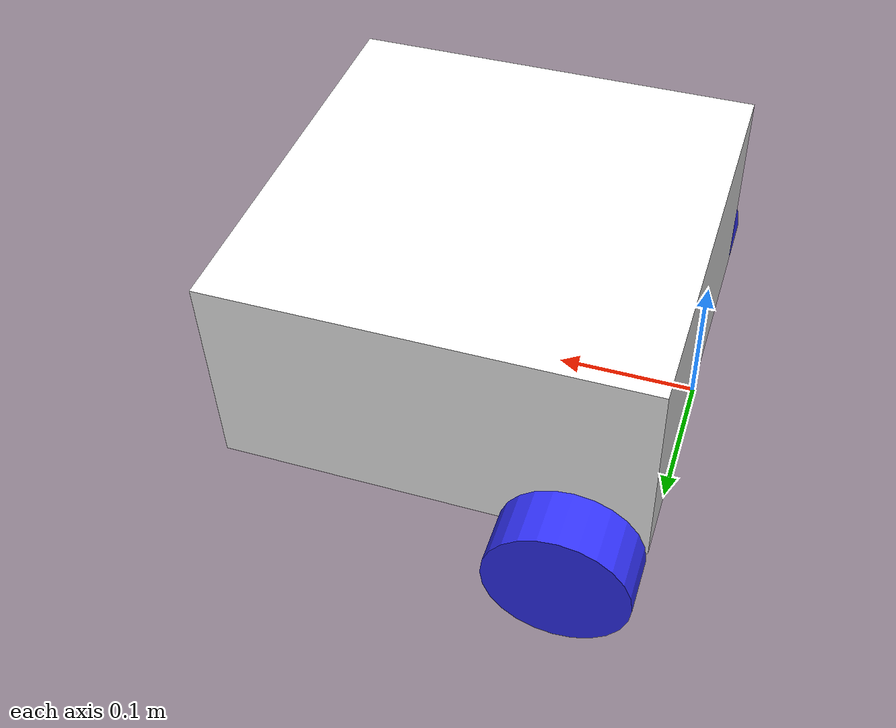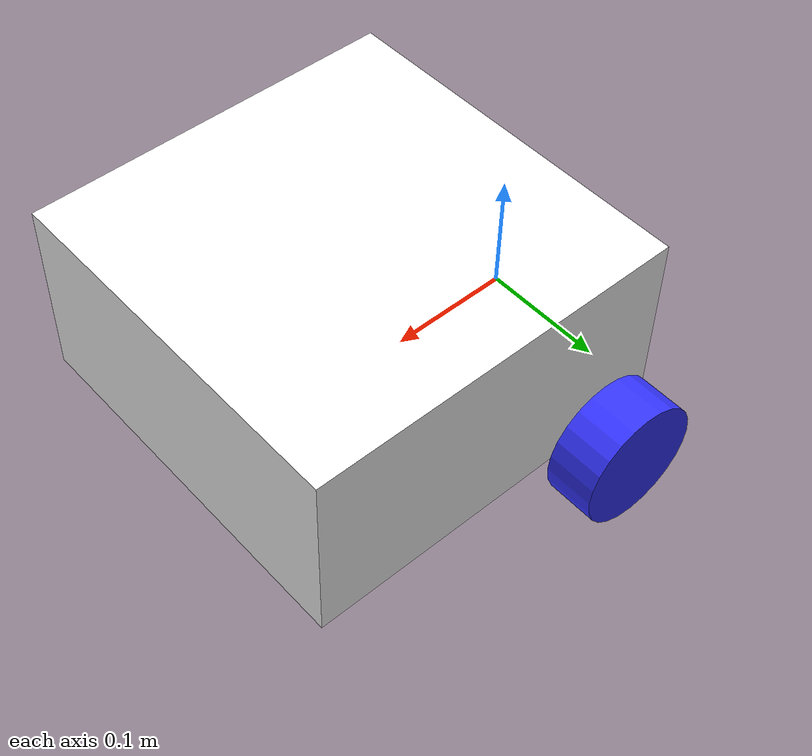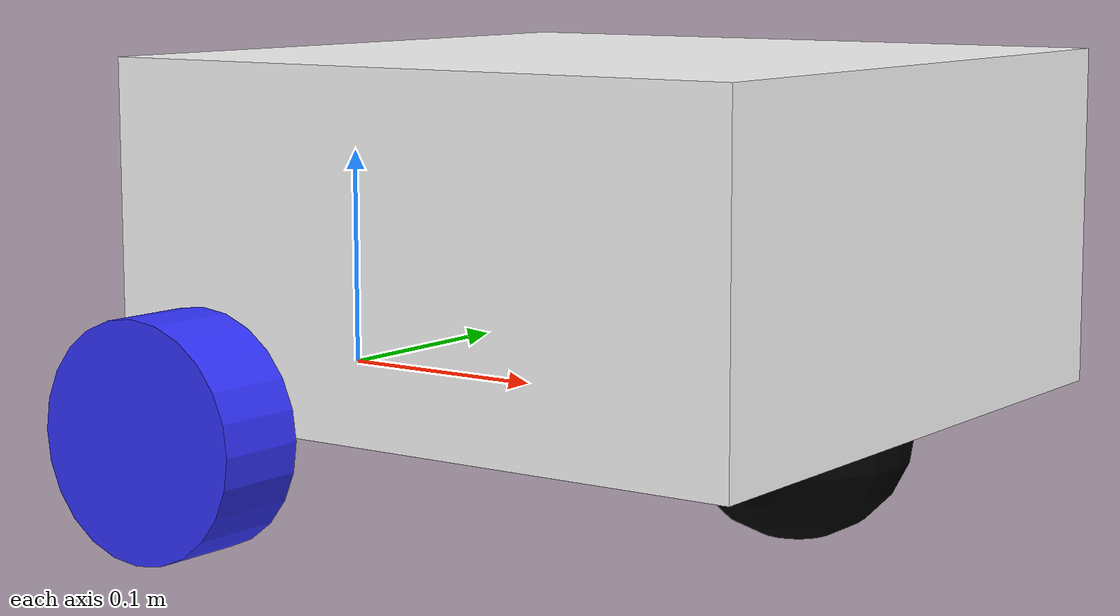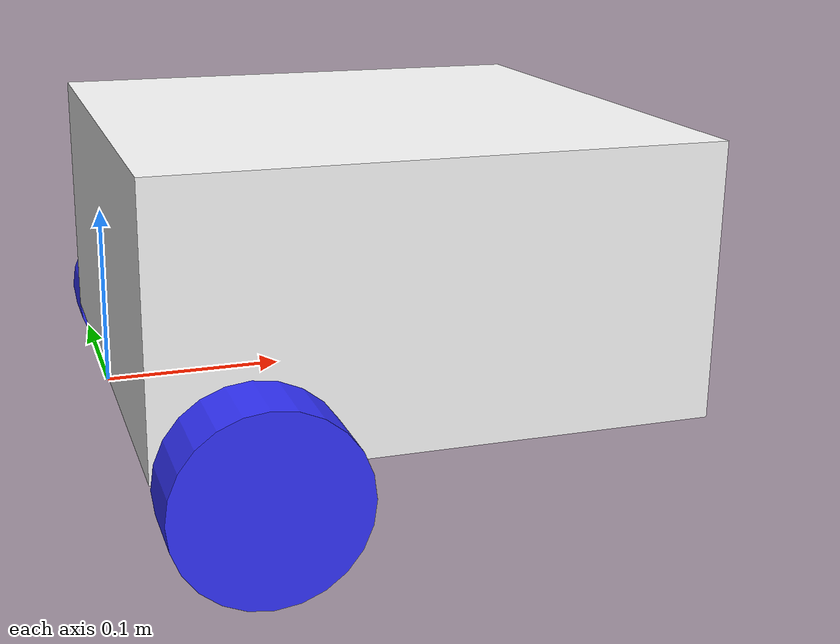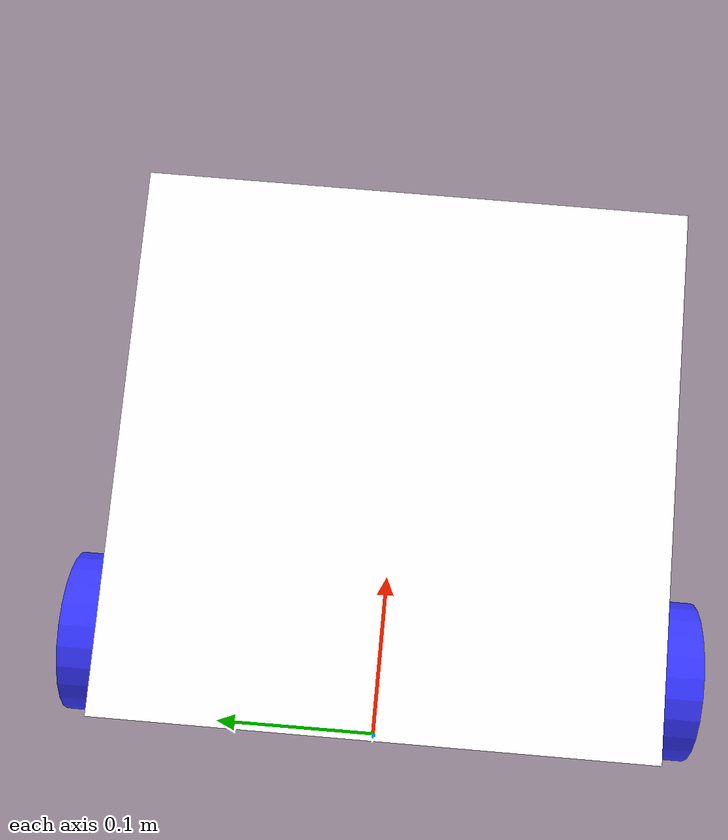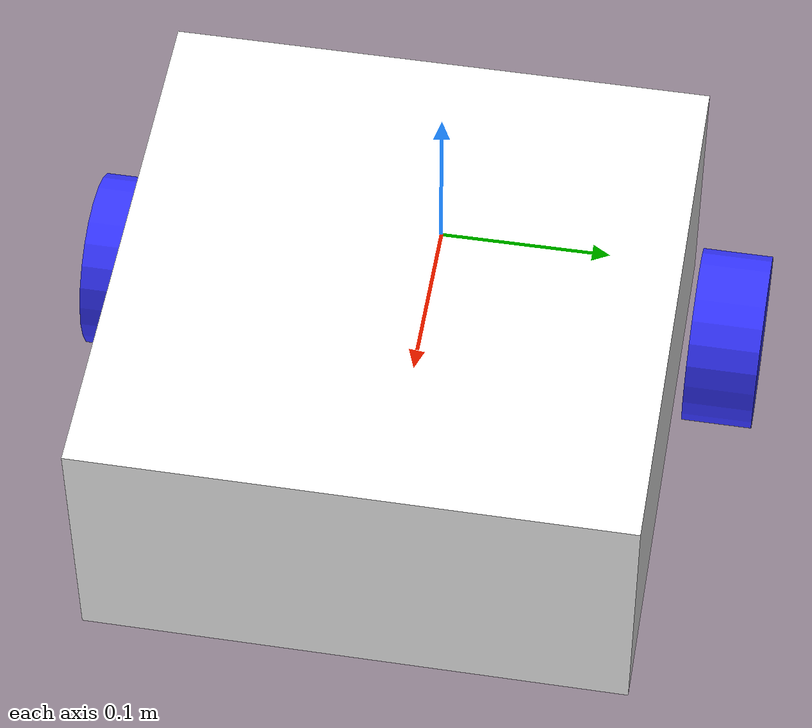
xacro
<?xml version="1.0"?>
<robot xmlns:xacro="http://www.ros.org/wiki/xacro"  name="robot">

    <xacro:include filename="inertial_macros.xacro" />
    <xacro:property name="M_PI" value="3.1415926535897931" />

    <!--Materials-->

    <material name="white">
        <color rgba="1 1 1 1"/>
    </material>

    <material name="black">
        <color rgba="0 0 0 1"/>
    </material>

    <material name="orange">
        <color rgba="1 0.5 0 1"/>
    </material>

    <material name="blue">
        <color rgba="0.2 0.2 1 1"/>
    </material>

    <material name="red">
        <color rgba="1 0.2 0.2 1"/>
    </material>

    <!--Chassis-->

    <link name="base_link" />

    <joint name="base_footprint_joint" type="fixed">
        <origin xyz="0 0 -0.05" rpy="0 0 0"/>
        <parent link="base_link"/>
        <child link="base_footprint"/>
    </joint>

    <link name="base_footprint" />

    <joint name = "chassis_joint" type="fixed">
        <origin xyz="0 0 0" rpy="0 0 0"/>
        <parent link="base_link"/>
        <child link="chassis"/>
    </joint>

    <link name="chassis">
        <visual>
            <origin xyz="0.15 0 0.075" rpy="0 0 0"/>
            <geometry>
                <box size="0.3 0.3 0.15"/>
            </geometry>
            <material name="white"/>
        </visual>

        <collision>
            <origin xyz="0.15 0 0.075" rpy="0 0 0"/>
            <geometry>
                <box size="0.3 0.3 0.15"/>
            </geometry>
        </collision>

        <xacro:inertial_box mass="0.5" x="0.3" y="0.3" z="0.15">
            <origin xyz="0.15 0 0.075" rpy="0 0 0"/>
        </xacro:inertial_box>
    </link>
    <gazebo reference="chassis">
        <material>Gazebo/White</material>
    </gazebo>

    <!--LEFT WHEEL-->

    <joint name = "left_wheel_joint" type="continuous">
        <origin xyz="0.05 0.175 0" rpy="-${M_PI/2} 0 0"/>
        <parent link="base_link"/>
        <child link="left_wheel"/>
        <axis xyz="0 0 1"/>
        <limit effort="100" velocity="10" lower="-10" upper="10"/>
    </joint>

    <link name="left_wheel">
        <visual>
            <geometry>
                <cylinder radius="0.05" length="0.04"/>
            </geometry>
            <material name="blue"/>
        </visual>

        <collision>
            <geometry>
                <cylinder radius="0.05" length="0.04"/>
            </geometry>
        </collision>

        <xacro:inertial_cylinder mass="0.1" length="0.04" radius="0.05">
            <origin xyz="0 0 0" rpy="0 0 0"/>
        </xacro:inertial_cylinder>
    </link>
    <gazebo reference="left_wheel">
        <material>Gazebo/Blue</material>
    </gazebo>

    <!--RIGHT WHEEL-->

    <joint name = "right_wheel_joint" type="continuous">
        <origin xyz="0.05 -0.175 0" rpy="${M_PI/2} 0 0"/>
        <parent link="base_link"/>
        <child link="right_wheel"/>
        <axis xyz="0 0 -1"/>
        <limit effort="100" velocity="10" lower="-10" upper="10"/>
    </joint>

    <link name="right_wheel">
        <visual>
            <geometry>
                <cylinder radius="0.05" length="0.04"/>
            </geometry>
            <material name="blue"/>
        </visual>

        <collision>
            <geometry>
                <cylinder radius="0.05" length="0.04"/>
            </geometry>
        </collision>

        <xacro:inertial_cylinder mass="0.1" length="0.04" radius="0.05">
            <origin xyz="0 0 0" rpy="0 0 0"/>
        </xacro:inertial_cylinder>
    </link>
    <gazebo reference="right_wheel">
        <material>Gazebo/Blue</material>
    </gazebo>

    <!--CASTER WHEEL-->

    <joint name = "caster_wheel_joint" type="fixed">
        <origin xyz="0.24 0 0" rpy="0 0 0"/>
        <parent link="chassis"/>
        <child link="caster_wheel"/>
    </joint>

    <link name="caster_wheel">
        <visual>
            <geometry>
                <sphere radius="0.05" length="0.04"/>
            </geometry>
            <material name="black"/>
        </visual>

        <collision>
            <geometry>
                <sphere radius="0.05" length="0.04"/>
            </geometry>
        </collision>

        <xacro:inertial_sphere mass="0.1" radius="0.05">
            <origin xyz="0 0 0" rpy="0 0 0"/>
        </xacro:inertial_sphere>
    </link>
    <gazebo reference="caster_wheel">
        <material>Gazebo/Black</material>
        <mu1 value = "0.001" />
        <mu2 value = "0.001" />
    </gazebo>

</robot>
